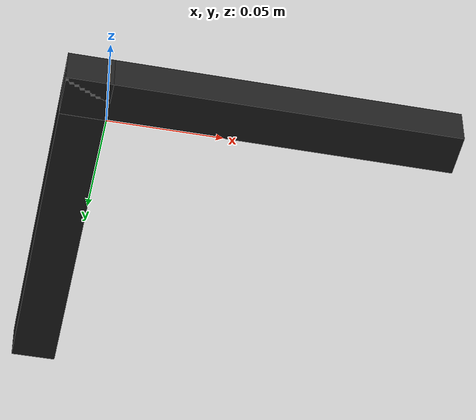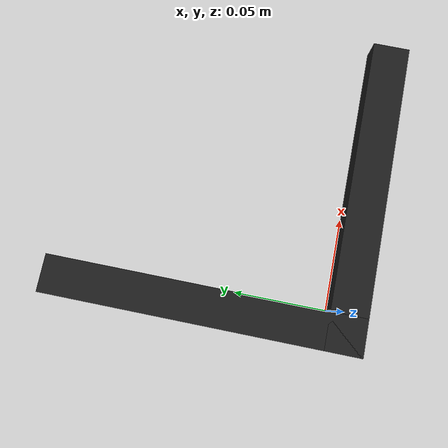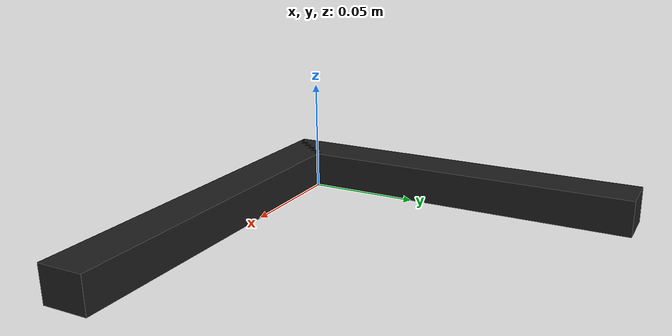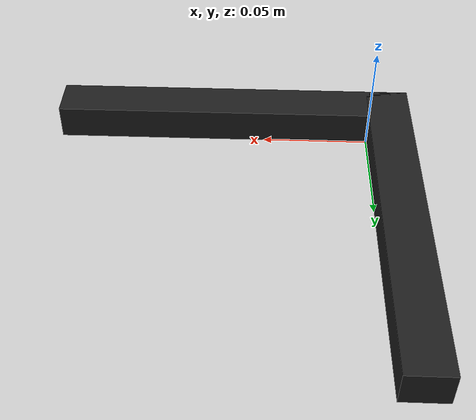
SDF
<?xml version="1.0" ?>
<!-- |    This document was autogenerated by xacro from model.sdf.xacro                | -->
<!-- |    EDITING THIS FILE BY HAND IS NOT RECOMMENDED                                 | -->
<sdf version="1.4" xmlns:xacro="http://www.ros.org/wiki/xacro">
  <model name="pentomino_fixture">
    <static>true</static>
    <link name="pentomino_fixture">
      <collision name="bar_H">
        <geometry>
          <box>
            <size>0.02 0.17 0.016</size>
          </box>
        </geometry>
        <pose>-0.01 0.065 0.008 0 0 0</pose>
      </collision>
      <visual name="bar_H">
        <geometry>
          <box>
            <size>0.02 0.17 0.016</size>
          </box>
        </geometry>
        <pose>-0.01 0.065 0.008 0 0 0</pose>
        <material>
          <script>
            <name>Gazebo/Black</name>
          </script>
        </material>
      </visual>
      <collision name="bar_V">
        <geometry>
          <box>
            <size>0.02 0.17 0.016</size>
          </box>
        </geometry>
        <pose>0.065 -0.01 0.008 0 0 1.57079632679</pose>
      </collision>
      <visual name="bar_V">
        <geometry>
          <box>
            <size>0.02 0.17 0.016</size>
          </box>
        </geometry>
        <pose>0.065 -0.01 0.008 0 0 1.57079632679</pose>
        <material>
          <script>
            <name>Gazebo/Black</name>
          </script>
        </material>
      </visual>
    </link>
  </model>
</sdf>
